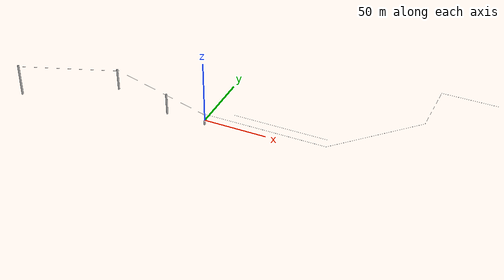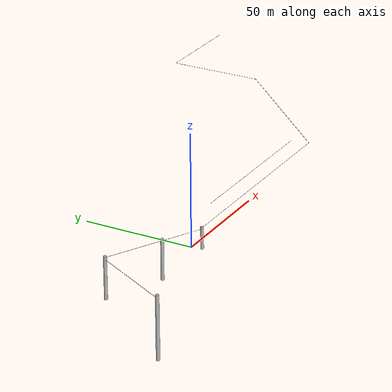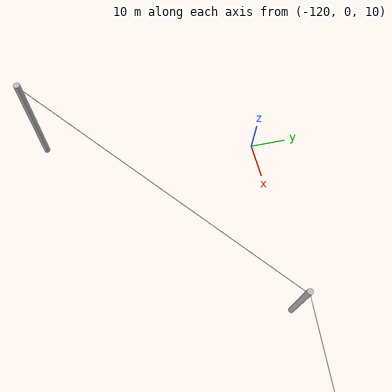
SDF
<sdf version="1.4">
 <world name="outdoor">
  <scene><ambient>0.4 0.4 0.4 1</ambient><background>0.7 0.7 0.7 1</background><shadows>1</shadows></scene>
  <physics name="default_physics" default="0" type="ode">
   <gravity>0 0 -9.8066</gravity>
   <ode>
    <solver>
     <type>quick</type>
     <iters>10</iters>
     <sor>1.0</sor>
     <use_dynamic_moi_rescaling>0</use_dynamic_moi_rescaling>
    </solver>
    <constraints>
     <cfm>0</cfm>
     <erp>0.2</erp>
     <contact_max_correcting_vel>100</contact_max_correcting_vel>
     <contact_surface_layer>0.001</contact_surface_layer>
    </constraints>
   </ode>
   <max_step_size>0.004</max_step_size>
   <real_time_factor>1</real_time_factor>
   <real_time_update_rate>250</real_time_update_rate>
   <magnetic_field>6e-06 2.3e-05 -4.2e-05</magnetic_field>
  </physics>
  <light type="directional" name="sun">
   <cast_shadows>false</cast_shadows>
   <pose>0 0 100 0 0 0</pose>
   <diffuse>0.8 0.8 0.8 1</diffuse>
   <specular>0.9 0.9 0.9 1</specular>
   <attenuation>
    <range>1000</range>
    <constant>0.9</constant>
    <linear>0.01</linear>
    <quadratic>0.001</quadratic>
   </attenuation>
   <direction>0.2 0.2 -0.9</direction>
  </light>
  <light type="point" name="light_bulb">
   <cast_shadows>false</cast_shadows>
   <pose>-14 0 5 0 0 0</pose>
   <diffuse>0.3 0.3 0.3 1</diffuse>
   <specular>0.0 0.0 0.0 1</specular>
   <attenuation>
    <range>80</range>
    <constant>0.9</constant>
    <linear>0.01</linear>
    <quadratic>0.001</quadratic>
   </attenuation>
  </light>
  <model name="Wire_low_res_1">
   <static>1</static>
   <link name="link">
    <visual name="visual">
     <cast_shadows>false</cast_shadows>
     <geometry><cylinder><radius>0.05</radius><length>75</length></cylinder></geometry>
    </visual>
   </link>
   <pose>60 4 9 0 1.570796 0</pose>
  </model>
  <model name="Wire_low_res_2">
   <static>1</static>
   <link name="link">
    <visual name="visual">
     <cast_shadows>false</cast_shadows>
     <geometry><cylinder><radius>0.05</radius><length>96.5</length></cylinder></geometry>
    </visual>
   </link>
   <pose>50.8 -4 9 0 1.570796 0</pose>
  </model>
  <model name="Wire_low_res_3">
   <static>1</static>
   <link name="link">
    <visual name="visual">
     <cast_shadows>false</cast_shadows>
     <geometry><cylinder><radius>0.05</radius><length>79.8</length></cylinder></geometry>
    </visual>
   </link>
   <pose>127.2 24.2 9 0 1.570796 0.785398</pose>
  </model>
  <model name="Wire_low_res_4">
   <static>1</static>
   <link name="link">
    <visual name="visual">
     <cast_shadows>false</cast_shadows>
     <geometry><cylinder><radius>0.05</radius><length>44</length></cylinder></geometry>
    </visual>
   </link>
   <pose>155 74 9 0 1.570796 1.570796</pose>
  </model>
  <model name="Wire_low_res_5">
   <static>1</static>
   <link name="link">
    <visual name="visual">
     <cast_shadows>false</cast_shadows>
     <geometry><cylinder><radius>0.05</radius><length>44</length></cylinder></geometry>
    </visual>
   </link>
   <pose>177 96 9 0 1.570796 0</pose>
  </model>
  <model name="Torre_1">
   <static>1</static>
   <link name="link">
    <visual name="visual">
     <cast_shadows>false</cast_shadows>
     <geometry><cylinder><radius>0.7</radius><length>10</length></cylinder></geometry>
    </visual>
   </link>
   <pose>1.82 -4 4.5 0 0 0</pose>
  </model>
  <model name="Torre_2">
   <static>1</static>
   <link name="link">
    <visual name="visual">
     <cast_shadows>false</cast_shadows>
     <geometry><cylinder><radius>0.7</radius><length>18</length></cylinder></geometry>
    </visual>
   </link>
   <pose>-30 -4 9 0 0 0</pose>
  </model>
  <model name="Torre_3">
   <static>1</static>
   <link name="link">
    <visual name="visual">
     <cast_shadows>false</cast_shadows>
     <geometry><cylinder><radius>0.7</radius><length>18</length></cylinder></geometry>
    </visual>
   </link>
   <pose>-71.63 -4 20 0 0 0</pose>
  </model>
  <model name="Torre_4">
   <static>1</static>
   <link name="link">
    <visual name="visual">
     <cast_shadows>false</cast_shadows>
     <geometry><cylinder><radius>0.7</radius><length>25</length></cylinder></geometry>
    </visual>
   </link>
   <pose>-121.5 -55.8 37 0 0 0</pose>
  </model>
  <model name="Tline_Wire_low_res_1">
   <static>1</static>
   <link name="link">
    <visual name="visual">
     <cast_shadows>false</cast_shadows>
     <geometry><cylinder><radius>0.05</radius><length>75</length></cylinder></geometry>
    </visual>
   </link>
   <pose>-35 -4.08 18.5 -2.004012 0.898703 -1.920104</pose>
  </model>
  <model name="Tline_Wire_low_res_2">
   <static>1</static>
   <link name="link">
    <visual name="visual">
     <cast_shadows>false</cast_shadows>
     <geometry><cylinder><radius>0.05</radius><length>75</length></cylinder></geometry>
    </visual>
   </link>
   <pose>-96.7 -29.9 38 0.055157 -1.289136 0.744031</pose>
  </model>
  <model name="road_boxes">
   <static>true</static>
   <link name="link">
    <collision name="collision_1">
     <pose>51 0 0 0 0 0</pose>
     <geometry><box><size>102 7.34 0.02</size></box></geometry>
     <surface><friction><ode><mu>0.8</mu><mu2>0.8</mu2></ode></friction></surface>
    </collision>
    <collision name="collision_2">
     <pose>125 25 0 0 0 0.78539</pose>
     <geometry><box><size>72 7.34 0.02</size></box></geometry>
     <surface><friction><ode><mu>0.8</mu><mu2>0.8</mu2></ode></friction></surface>
    </collision>
    <collision name="collision_3">
     <pose>150 75 0 0 0 0</pose>
     <geometry><box><size>7.34 53 0.02</size></box></geometry>
     <surface><friction><ode><mu>0.8</mu><mu2>0.8</mu2></ode></friction></surface>
    </collision>
    <collision name="collision_4">
     <pose>173.5 100 0 0 0 0</pose>
     <geometry><box><size>54.5 7.34 0.02</size></box></geometry>
     <surface><friction><ode><mu>0.8</mu><mu2>0.8</mu2></ode></friction></surface>
    </collision>
    <collision name="collision_5">
     <pose>198 106 0 0 0 0</pose>
     <geometry><box><size>6 5 0.02</size></box></geometry>
     <surface><friction><ode><mu>0.8</mu><mu2>0.8</mu2></ode></friction></surface>
    </collision>
   </link>
  </model>
 </world>
</sdf>
